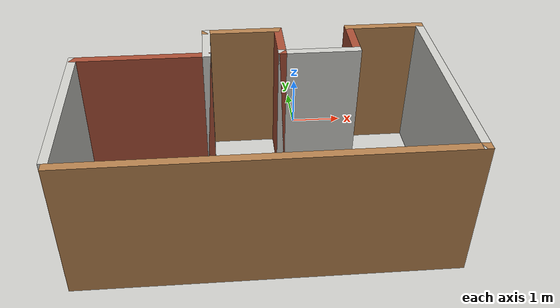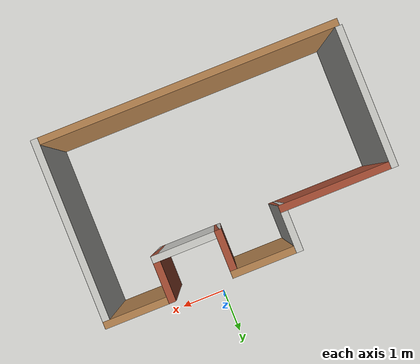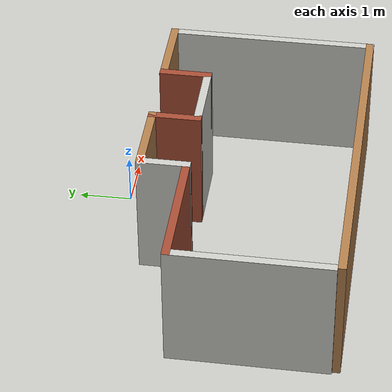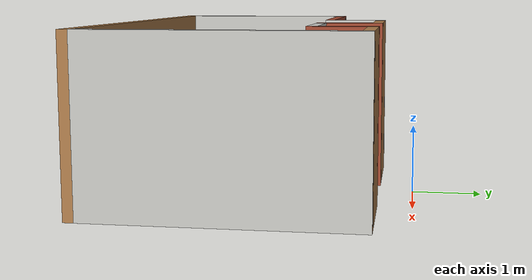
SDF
<?xml version='1.0'?>
<sdf version='1.6'>
  <model name='my_new_world2'>
    <pose frame=''>-0.92 -2.485 0 0 -0 0</pose>
    <link name='Wall_0'>
      <collision name='Wall_0_Collision'>
        <geometry>
          <box>
            <size>3 0.15 2.5</size>
          </box>
        </geometry>
        <pose frame=''>0 0 1.25 0 -0 0</pose>
      </collision>
      <visual name='Wall_0_Visual'>
        <pose frame=''>0 0 1.25 0 -0 0</pose>
        <geometry>
          <box>
            <size>3 0.15 2.5</size>
          </box>
        </geometry>
        <material>
          <script>
            <uri>file://media/materials/scripts/gazebo.material</uri>
            <name>Gazebo/CeilingTiled</name>
          </script>
          <ambient>1 1 1 1</ambient>
        </material>
        <meta>
          <layer>0</layer>
        </meta>
      </visual>
      <pose frame=''>-3.2 -0.35 0 0 -0 1.5708</pose>
    </link>
    <link name='Wall_1'>
      <collision name='Wall_1_Collision'>
        <geometry>
          <box>
            <size>2.5 0.15 2.5</size>
          </box>
        </geometry>
        <pose frame=''>0 0 1.25 0 -0 0</pose>
      </collision>
      <visual name='Wall_1_Visual'>
        <pose frame=''>0 0 1.25 0 -0 0</pose>
        <geometry>
          <box>
            <size>2.5 0.15 2.5</size>
          </box>
        </geometry>
        <material>
          <script>
            <uri>file://media/materials/scripts/gazebo.material</uri>
            <name>Gazebo/Bricks</name>
          </script>
          <ambient>1 1 1 1</ambient>
        </material>
        <meta>
          <layer>0</layer>
        </meta>
      </visual>
      <pose frame=''>-2.025 1.075 0 0 -0 0</pose>
    </link>
    <link name='Wall_2'>
      <collision name='Wall_2_Collision'>
        <geometry>
          <box>
            <size>1 0.15 2.5</size>
          </box>
        </geometry>
        <pose frame=''>0 0 1.25 0 -0 0</pose>
      </collision>
      <visual name='Wall_2_Visual'>
        <pose frame=''>0 0 1.25 0 -0 0</pose>
        <geometry>
          <box>
            <size>1 0.15 2.5</size>
          </box>
        </geometry>
        <material>
          <script>
            <uri>file://media/materials/scripts/gazebo.material</uri>
            <name>Gazebo/CeilingTiled</name>
          </script>
          <ambient>1 1 1 1</ambient>
        </material>
        <meta>
          <layer>0</layer>
        </meta>
      </visual>
      <pose frame=''>-0.85 1.5 0 0 -0 1.5708</pose>
    </link>
    <link name='Wall_3'>
      <collision name='Wall_3_Collision'>
        <geometry>
          <box>
            <size>1.5 0.15 2.5</size>
          </box>
        </geometry>
        <pose frame=''>0 0 1.25 0 -0 0</pose>
      </collision>
      <visual name='Wall_3_Visual'>
        <pose frame=''>0 0 1.25 0 -0 0</pose>
        <geometry>
          <box>
            <size>1.5 0.15 2.5</size>
          </box>
        </geometry>
        <material>
          <script>
            <uri>file://media/materials/scripts/gazebo.material</uri>
            <name>Gazebo/Wood</name>
          </script>
          <ambient>1 1 1 1</ambient>
        </material>
        <meta>
          <layer>0</layer>
        </meta>
      </visual>
      <pose frame=''>-0.175 1.925 0 0 -0 0</pose>
    </link>
    <link name='Wall_4'>
      <collision name='Wall_4_Collision'>
        <geometry>
          <box>
            <size>1 0.15 2.5</size>
          </box>
        </geometry>
        <pose frame=''>0 0 1.25 0 -0 0</pose>
      </collision>
      <visual name='Wall_4_Visual'>
        <pose frame=''>0 0 1.25 0 -0 0</pose>
        <geometry>
          <box>
            <size>1 0.15 2.5</size>
          </box>
        </geometry>
        <material>
          <script>
            <uri>file://media/materials/scripts/gazebo.material</uri>
            <name>Gazebo/Bricks</name>
          </script>
          <ambient>1 1 1 1</ambient>
        </material>
        <meta>
          <layer>0</layer>
        </meta>
      </visual>
      <pose frame=''>0.5 1.5 0 0 -0 -1.5708</pose>
    </link>
    <link name='Wall_5'>
      <collision name='Wall_5_Collision'>
        <geometry>
          <box>
            <size>1.5 0.15 2.5</size>
          </box>
        </geometry>
        <pose frame=''>0 0 1.25 0 -0 0</pose>
      </collision>
      <visual name='Wall_5_Visual'>
        <pose frame=''>0 0 1.25 0 -0 0</pose>
        <geometry>
          <box>
            <size>1.5 0.15 2.5</size>
          </box>
        </geometry>
        <material>
          <script>
            <uri>file://media/materials/scripts/gazebo.material</uri>
            <name>Gazebo/CeilingTiled</name>
          </script>
          <ambient>1 1 1 1</ambient>
        </material>
        <meta>
          <layer>0</layer>
        </meta>
      </visual>
      <pose frame=''>1.175 1.075 0 0 -0 0</pose>
    </link>
    <link name='Wall_6'>
      <collision name='Wall_6_Collision'>
        <geometry>
          <box>
            <size>1 0.15 2.5</size>
          </box>
        </geometry>
        <pose frame=''>0 0 1.25 0 -0 0</pose>
      </collision>
      <visual name='Wall_6_Visual'>
        <pose frame=''>0 0 1.25 0 -0 0</pose>
        <geometry>
          <box>
            <size>1 0.15 2.5</size>
          </box>
        </geometry>
        <material>
          <script>
            <uri>file://media/materials/scripts/gazebo.material</uri>
            <name>Gazebo/Bricks</name>
          </script>
          <ambient>1 1 1 1</ambient>
        </material>
        <meta>
          <layer>0</layer>
        </meta>
      </visual>
      <pose frame=''>1.85 1.5 0 0 -0 1.5708</pose>
    </link>
    <link name='Wall_7'>
      <collision name='Wall_7_Collision'>
        <geometry>
          <box>
            <size>1.5 0.15 2.5</size>
          </box>
        </geometry>
        <pose frame=''>0 0 1.25 0 -0 0</pose>
      </collision>
      <visual name='Wall_7_Visual'>
        <pose frame=''>0 0 1.25 0 -0 0</pose>
        <geometry>
          <box>
            <size>1.5 0.15 2.5</size>
          </box>
        </geometry>
        <material>
          <script>
            <uri>file://media/materials/scripts/gazebo.material</uri>
            <name>Gazebo/Wood</name>
          </script>
          <ambient>1 1 1 1</ambient>
        </material>
        <meta>
          <layer>0</layer>
        </meta>
      </visual>
      <pose frame=''>2.525 1.925 0 0 -0 0</pose>
    </link>
    <link name='Wall_8'>
      <collision name='Wall_8_Collision'>
        <geometry>
          <box>
            <size>4 0.15 2.5</size>
          </box>
        </geometry>
        <pose frame=''>0 0 1.25 0 -0 0</pose>
      </collision>
      <visual name='Wall_8_Visual'>
        <pose frame=''>0 0 1.25 0 -0 0</pose>
        <geometry>
          <box>
            <size>4 0.15 2.5</size>
          </box>
        </geometry>
        <material>
          <script>
            <uri>file://media/materials/scripts/gazebo.material</uri>
            <name>Gazebo/CeilingTiled</name>
          </script>
          <ambient>1 1 1 1</ambient>
        </material>
        <meta>
          <layer>0</layer>
        </meta>
      </visual>
      <pose frame=''>3.2 0 0 0 -0 -1.5708</pose>
    </link>
    <link name='Wall_9'>
      <collision name='Wall_9_Collision'>
        <geometry>
          <box>
            <size>6.5 0.15 2.5</size>
          </box>
        </geometry>
        <pose frame=''>0 0 1.25 0 -0 0</pose>
      </collision>
      <visual name='Wall_9_Visual'>
        <pose frame=''>0 0 1.25 0 -0 0</pose>
        <geometry>
          <box>
            <size>6.5 0.15 2.5</size>
          </box>
        </geometry>
        <material>
          <script>
            <uri>file://media/materials/scripts/gazebo.material</uri>
            <name>Gazebo/Wood</name>
          </script>
          <ambient>1 1 1 1</ambient>
        </material>
        <meta>
          <layer>0</layer>
        </meta>
      </visual>
      <pose frame=''>0.025 -1.925 0 0 -0 3.14159</pose>
    </link>
    <static>1</static>
  </model>
</sdf>
